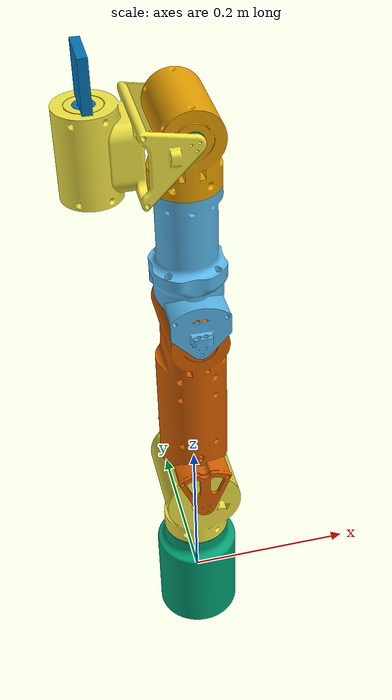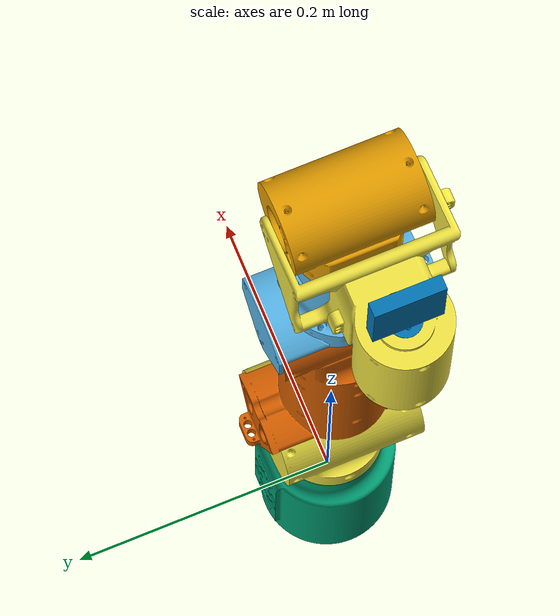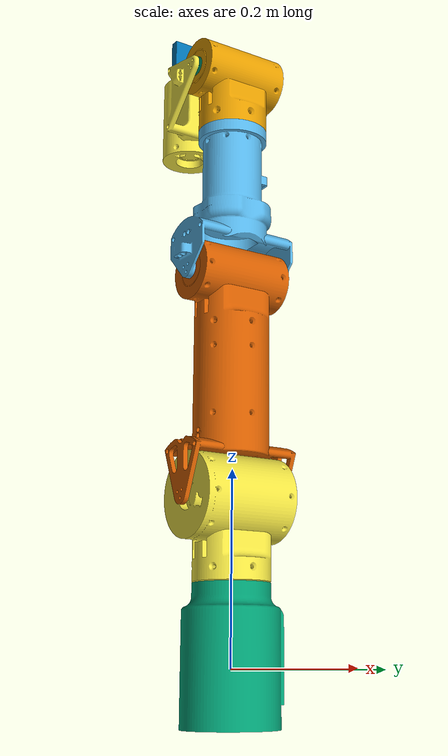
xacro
<?xml version="1.0"?>
<robot xmlns:xacro="http://www.ros.org/wiki/xacro" name="arm6dof">
    <xacro:arg name="initial_positions_file" default="initial_positions.yaml" />

    <!-- Import arm6dof urdf file -->
    <xacro:include filename="$(find arm6dof)/urdf/arm6dof.urdf" />

    <!-- Import control_xacro -->
    <xacro:include filename="arm6dof.ros2_control.xacro" />

    <xacro:arm6dof_ros2_control name="FakeSystem" initial_positions_file="$(arg initial_positions_file)"/>

</robot>

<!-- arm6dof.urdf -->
<robot name="arm6dof">
    <link name="world"/>

    <joint name="world_to_base" type="fixed">
        <parent link="world"/>
        <child link="jedziemy_dalej_V2_Obudowa_podstawa-v11-v1"/>
        <origin xyz="0 0 0" rpy="0 0 0"/>
    </joint>

    <link name="Silnik_ak45-36-v1">
        <inertial>
            <origin xyz="0.003580379446193227 5.406745075496171e-14 0.04092390119448847" rpy="0.0 -0.0 0.0" />
            <mass value="0.41683812668748693" />
            <inertia ixx="0.0001596718423631377" iyy="0.00016041758536708417" izz="6.298914759078449e-05" ixy="-1.0059454821655886e-18" iyz="-1.1753999951775428e-17" ixz="-8.523883825948129e-06" />
        </inertial>
        <visual name="Silnik_ak45-36-v1_visual">
            <origin xyz="0.003050453025397868 5.337498401704634e-14 0.034866814490128" rpy="-1.2136222858187365e-13 0.08726646259971599 -1.0000285373388856e-14" />
            <geometry>
                <mesh filename="package://arm6dof/urdf/meshes/Silnik_ak45-36-v1.stl" scale="0.001 0.001 0.001" />
            </geometry>
        </visual>
        <collision name="Silnik_ak45-36-v1_collision">
            <origin xyz="0.003050453025397868 5.337498401704634e-14 0.034866814490128" rpy="-1.2136222858187365e-13 0.08726646259971599 -1.0000285373388856e-14" />
            <geometry>
                <mesh filename="package://arm6dof/urdf/meshes/Silnik_ak45-36-v1.stl" scale="0.001 0.001 0.001" />
            </geometry>
        </collision>
    </link>
    <link name="jedziemy_dalej_V2_Obudowa_podstawa-v11-v1">
        <inertial>
            <origin xyz="2.471665912677848e-07 0.0032741555763765 0.014476011172937737" rpy="0.0 0.0 0.0" />
            <mass value="0.45097504935689353" />
            <inertia ixx="0.0011045045572738714" iyy="0.0010560043800969792" izz="0.0005942744180107535" ixy="-1.1961935170963945e-10" iyz="2.0893202204241118e-05" ixz="5.52168309819333e-09" />
        </inertial>
        <visual name="jedziemy_dalej_V2_Obudowa_podstawa-v11-v1_visual">
            <origin xyz="0.0 0.0 0.0" rpy="0.0 0.0 0.0" />
            <geometry>
                <mesh filename="package://arm6dof/urdf/meshes/jedziemy_dalej_V2_Obudowa_podstawa-v11-v1.stl" scale="0.001 0.001 0.001" />
            </geometry>
        </visual>
        <collision name="jedziemy_dalej_V2_Obudowa_podstawa-v11-v1_collision">
            <origin xyz="0.0 0.0 0.0" rpy="0.0 0.0 0.0" />
            <geometry>
                <mesh filename="package://arm6dof/urdf/meshes/jedziemy_dalej_V2_Obudowa_podstawa-v11-v1.stl" scale="0.001 0.001 0.001" />
            </geometry>
        </collision>
    </link>
    <link name="wyjscie_podstawa-v1">
        <inertial>
            <origin xyz="-0.007191918295976691 0.0017451314732682378 0.08340251930657093" rpy="0.0 -0.0 0.0" />
            <mass value="0.5337084968673121" />
            <inertia ixx="0.001365378966283453" iyy="0.0011271288576293961" izz="0.0008234185615442948" ixy="-3.9309111973658765e-07" iyz="-2.5356254302744965e-05" ixz="4.685015929818161e-05" />
        </inertial>
        <visual name="wyjscie_podstawa-v1_visual">
            <origin xyz="-0.011496597303514164 -0.2575499984801143 0.13197911921705802" rpy="1.2165799188215818e-13 0.08726646259971646 -3.1415926535897833" />
            <geometry>
                <mesh filename="package://arm6dof/urdf/meshes/wyjscie_podstawa-v1.stl" scale="0.001 0.001 0.001" />
            </geometry>
        </visual>
        <collision name="wyjscie_podstawa-v1_collision">
            <origin xyz="-0.011496597303514164 -0.2575499984801143 0.13197911921705802" rpy="1.2165799188215818e-13 0.08726646259971646 -3.1415926535897833" />
            <geometry>
                <mesh filename="package://arm6dof/urdf/meshes/wyjscie_podstawa-v1.stl" scale="0.001 0.001 0.001" />
            </geometry>
        </collision>
    </link>
    <link name="silnik60-v1">
        <inertial>
            <origin xyz="1.8495017073405507e-09 -4.334650220982894e-09 0.030465794657075565" rpy="0.0 -0.0 0.0" />
            <mass value="0.832000556903433" />
            <inertia ixx="0.00034640030869088206" iyy="0.00034640030868888973" izz="0.0005855795083725968" ixy="-1.7694179454963455e-16" iyz="3.972285346277488e-16" ixz="6.1582683397176e-17" />
        </inertial>
        <visual name="silnik60-v1_visual">
            <origin xyz="-0.014825189168012792 -0.16945272255215543 0.03379999848006464" rpy="-1.658062789394613 -1.5707963267947829 0" />
            <geometry>
                <mesh filename="package://arm6dof/urdf/meshes/silnik60-v1.stl" scale="0.001 0.001 0.001" />
            </geometry>
        </visual>
        <collision name="silnik60-v1_collision">
            <origin xyz="-0.014825189168012792 -0.16945272255215543 0.03379999848006464" rpy="-1.658062789394613 -1.5707963267947829 0" />
            <geometry>
                <mesh filename="package://arm6dof/urdf/meshes/silnik60-v1.stl" scale="0.001 0.001 0.001" />
            </geometry>
        </collision>
    </link>
    <link name="jedziemy_dalej_V2_Przegub_2_ucho_bez_kabla-v7-v1">
        <inertial>
            <origin xyz="-0.14928721628295327 -0.05224952167105884 0.013059017101912086" rpy="0.0 -0.0 0.0" />
            <mass value="0.8177528117001724" />
            <inertia ixx="0.0009834893122915855" iyy="0.0042632648765358085" izz="0.0044936841285563005" ixy="-4.325151590830977e-05" iyz="2.1575499105728883e-06" ixz="0.00031319160742792175" />
        </inertial>
        <visual name="jedziemy_dalej_V2_Przegub_2_ucho_bez_kabla-v7-v1_visual">
            <origin xyz="0.06755468522974517 0.0616000000000441 0.08373084013822489" rpy="1.4835298641951804 3.310614754159522e-15 -1.570796326794779" />
            <geometry>
                <mesh filename="package://arm6dof/urdf/meshes/jedziemy_dalej_V2_Przegub_2_ucho_bez_kabla-v7-v1.stl" scale="0.001 0.001 0.001" />
            </geometry>
        </visual>
        <collision name="jedziemy_dalej_V2_Przegub_2_ucho_bez_kabla-v7-v1_collision">
            <origin xyz="0.06755468522974517 0.0616000000000441 0.08373084013822489" rpy="1.4835298641951804 3.310614754159522e-15 -1.570796326794779" />
            <geometry>
                <mesh filename="package://arm6dof/urdf/meshes/jedziemy_dalej_V2_Przegub_2_ucho_bez_kabla-v7-v1.stl" scale="0.001 0.001 0.001" />
            </geometry>
        </collision>
    </link>
    <link name="jedziemy_dalej_V2_3_przegub-v1_Sprzeglo_ak45-36-v12-v1-v1">
        <inertial>
            <origin xyz="2.1240247161102843e-09 0.04108021962528416 -3.7123828278140536e-09" rpy="0.0 -0.0 0.0" />
            <mass value="0.4168381266874869" />
            <inertia ixx="0.00016041758556541727" iyy="6.224340438697792e-05" izz="0.00016041758536859858" ixy="2.0086471548552765e-15" iyz="-1.752445545492444e-16" ixz="-1.7351861318098122e-14" />
        </inertial>
        <visual name="jedziemy_dalej_V2_3_przegub-v1_Sprzeglo_ak45-36-v12-v1-v1_visual">
            <origin xyz="2.1238577385673807e-09 0.02499999583371225 -3.7123680751705025e-09" rpy="1.570796326794901 0.08726646259971611 1.2148404276792067e-13" />
            <geometry>
                <mesh filename="package://arm6dof/urdf/meshes/jedziemy_dalej_V2_3_przegub-v1_Sprzeglo_ak45-36-v12-v1-v1.stl" scale="0.001 0.001 0.001" />
            </geometry>
        </visual>
        <collision name="jedziemy_dalej_V2_3_przegub-v1_Sprzeglo_ak45-36-v12-v1-v1_collision">
            <origin xyz="2.1238577385673807e-09 0.02499999583371225 -3.7123680751705025e-09" rpy="1.570796326794901 0.08726646259971611 1.2148404276792067e-13" />
            <geometry>
                <mesh filename="package://arm6dof/urdf/meshes/jedziemy_dalej_V2_3_przegub-v1_Sprzeglo_ak45-36-v12-v1-v1.stl" scale="0.001 0.001 0.001" />
            </geometry>
        </collision>
    </link>
    <link name="Bez-nazwy-v1_jedziemy_dalej_V2_silnik_ak_45_36-v1-v1">
        <inertial>
            <origin xyz="0.0035429149450254905 -0.04049572393485256 1.3297558110192399e-09" rpy="0.0 -0.0 0.0" />
            <mass value="0.4192142851894471" />
            <inertia ixx="0.00016334542340003255" iyy="6.297161364714481e-05" izz="0.00016411963707958777" ixy="8.849305406149165e-06" iyz="1.5707378973883745e-16" ixz="-1.3742262536253769e-17" />
        </inertial>
        <visual name="Bez-nazwy-v1_jedziemy_dalej_V2_silnik_ak_45_36-v1-v1_visual">
            <origin xyz="0.00521191170660039 -0.059572444214703424 1.3297689743785313e-09" rpy="-1.5707963267950176 6.687500211728214e-15 0.08726646259971646" />
            <geometry>
                <mesh filename="package://arm6dof/urdf/meshes/Bez-nazwy-v1_jedziemy_dalej_V2_silnik_ak_45_36-v1-v1.stl" scale="0.001 0.001 0.001" />
            </geometry>
        </visual>
        <collision name="Bez-nazwy-v1_jedziemy_dalej_V2_silnik_ak_45_36-v1-v1_collision">
            <origin xyz="0.00521191170660039 -0.059572444214703424 1.3297689743785313e-09" rpy="-1.5707963267950176 6.687500211728214e-15 0.08726646259971646" />
            <geometry>
                <mesh filename="package://arm6dof/urdf/meshes/Bez-nazwy-v1_jedziemy_dalej_V2_silnik_ak_45_36-v1-v1.stl" scale="0.001 0.001 0.001" />
            </geometry>
        </collision>
    </link>
    <link name="jedziemy_dalej_V2_Obrót-pózniej-v5-v1">
        <inertial>
            <origin xyz="-0.0046158587778199235 -0.0011095045862415448 -0.051933778126588205" rpy="0.0 -0.0 0.0" />
            <mass value="0.32878531940648154" />
            <inertia ixx="0.000509832899061511" iyy="0.0004038297217688336" izz="0.0003372019176561922" ixy="1.7348225850772502e-07" iyz="-1.0277384035525924e-05" ixz="-1.5994832759011132e-05" />
        </inertial>
        <visual name="jedziemy_dalej_V2_Obrót-pózniej-v5-v1_visual">
            <origin xyz="-0.010075962435666367 0.00754999980982846 -0.11574114442623273" rpy="-3.141592653589672 -0.08726646259971646 3.1415926535897865" />
            <geometry>
                <mesh filename="package://arm6dof/urdf/meshes/jedziemy_dalej_V2_Obrót-pózniej-v5-v1.stl" scale="0.001 0.001 0.001" />
            </geometry>
        </visual>
        <collision name="jedziemy_dalej_V2_Obrót-pózniej-v5-v1_collision">
            <origin xyz="-0.010075962435666367 0.00754999980982846 -0.11574114442623273" rpy="-3.141592653589672 -0.08726646259971646 3.1415926535897865" />
            <geometry>
                <mesh filename="package://arm6dof/urdf/meshes/jedziemy_dalej_V2_Obrót-pózniej-v5-v1.stl" scale="0.001 0.001 0.001" />
            </geometry>
        </collision>
    </link>
    <link name="jedziemy_dalej_V2_Komponent98-v1">
        <inertial>
            <origin xyz="-0.007566279995924292 0.05135006757190421 -0.08807751210315004" rpy="0.0 -0.0 0.0" />
            <mass value="0.3053908468979247" />
            <inertia ixx="0.0008056737865500107" iyy="0.0006986117839719048" izz="0.0003737065384801923" ixy="5.44375166488086e-07" iyz="5.261648555922213e-06" ixz="-3.722509979493284e-05" />
        </inertial>
        <visual name="jedziemy_dalej_V2_Komponent98-v1_visual">
            <origin xyz="-0.0104897036537713 0.05128649132976626 -0.12245172543197906" rpy="1.5707963267950182 -0.0872664625997162 3.1415926535897865" />
            <geometry>
                <mesh filename="package://arm6dof/urdf/meshes/jedziemy_dalej_V2_Komponent98-v1.stl" scale="0.001 0.001 0.001" />
            </geometry>
        </visual>
        <collision name="jedziemy_dalej_V2_Komponent98-v1_collision">
            <origin xyz="-0.0104897036537713 0.05128649132976626 -0.12245172543197906" rpy="1.5707963267950182 -0.0872664625997162 3.1415926535897865" />
            <geometry>
                <mesh filename="package://arm6dof/urdf/meshes/jedziemy_dalej_V2_Komponent98-v1.stl" scale="0.001 0.001 0.001" />
            </geometry>
        </collision>
    </link>
    <link name="jedziemy_dalej_V2_silnik_ak45-10-v1">
        <inertial>
            <origin xyz="3.4273072380130997e-10 1.3841049906204716e-09 0.028604161845095226" rpy="0.0 -0.0 0.0" />
            <mass value="0.3323674270148887" />
            <inertia ixx="7.296632840646244e-05" iyy="7.296632840774278e-05" izz="8.75986515185348e-05" ixy="-1.1969591984239966e-16" iyz="3.941048055676882e-17" ixz="-5.20537290375787e-18" />
        </inertial>
        <visual name="jedziemy_dalej_V2_silnik_ak45-10-v1_visual">
            <origin xyz="0.645624326954073 0.04934544478131574 0.020169594045718397" rpy="0.08726646259971632 -1.5707963267947829 0" />
            <geometry>
                <mesh filename="package://arm6dof/urdf/meshes/jedziemy_dalej_V2_silnik_ak45-10-v1.stl" scale="0.001 0.001 0.001" />
            </geometry>
        </visual>
        <collision name="jedziemy_dalej_V2_silnik_ak45-10-v1_collision">
            <origin xyz="0.645624326954073 0.04934544478131574 0.020169594045718397" rpy="0.08726646259971632 -1.5707963267947829 0" />
            <geometry>
                <mesh filename="package://arm6dof/urdf/meshes/jedziemy_dalej_V2_silnik_ak45-10-v1.stl" scale="0.001 0.001 0.001" />
            </geometry>
        </collision>
    </link>
    <link name="jedziemy_dalej_V2_Komponent98-Kopiuj-v1">
        <inertial>
            <origin xyz="0.07365746358145224 0.012687811439143602 0.04794738442370318" rpy="0.0 -0.0 0.0" />
            <mass value="0.29460800887883326" />
            <inertia ixx="0.00040040959872039705" iyy="0.00040577634423346384" izz="0.0004474525637582702" ixy="-6.379315144444338e-06" iyz="1.0811119801610974e-06" ixz="2.7359489795726424e-06" />
        </inertial>
        <visual name="jedziemy_dalej_V2_Komponent98-Kopiuj-v1_visual">
            <origin xyz="0.09312353433404426 0.0026086896217353585 0.047950207200446696" rpy="-1.1353778868109705e-13 -6.5913539911443344e-15 -0.08726646259971657" />
            <geometry>
                <mesh filename="package://arm6dof/urdf/meshes/jedziemy_dalej_V2_Komponent98-Kopiuj-v1.stl" scale="0.001 0.001 0.001" />
            </geometry>
        </visual>
        <collision name="jedziemy_dalej_V2_Komponent98-Kopiuj-v1_collision">
            <origin xyz="0.09312353433404426 0.0026086896217353585 0.047950207200446696" rpy="-1.1353778868109705e-13 -6.5913539911443344e-15 -0.08726646259971657" />
            <geometry>
                <mesh filename="package://arm6dof/urdf/meshes/jedziemy_dalej_V2_Komponent98-Kopiuj-v1.stl" scale="0.001 0.001 0.001" />
            </geometry>
        </collision>
    </link>
    <link name="jedziemy_dalej_V2_silnik_ak45-10-Kopiuj-v1">
        <inertial>
            <origin xyz="0.0006150751617115268 -0.007030380133527175 2.7995666440627786e-09" rpy="0.0 -0.0 0.0" />
            <mass value="0.5402493377389448" />
            <inertia ixx="0.0005552695009332642" iyy="0.00013221837533821008" izz="0.0005205551135322728" ixy="3.729766383056901e-05" iyz="5.345116710353537e-17" ixz="1.6263032587282567e-18" />
        </inertial>
        <visual name="jedziemy_dalej_V2_silnik_ak45-10-Kopiuj-v1_visual">
            <origin xyz="0.6489814058411396 0.010973813352139886 0.007112201434090681" rpy="-1.5707963267949976 1.1724678376479107e-13 1.6580627893946132" />
            <geometry>
                <mesh filename="package://arm6dof/urdf/meshes/jedziemy_dalej_V2_silnik_ak45-10-Kopiuj-v1.stl" scale="0.001 0.001 0.001" />
            </geometry>
        </visual>
        <collision name="jedziemy_dalej_V2_silnik_ak45-10-Kopiuj-v1_collision">
            <origin xyz="0.6489814058411396 0.010973813352139886 0.007112201434090681" rpy="-1.5707963267949976 1.1724678376479107e-13 1.6580627893946132" />
            <geometry>
                <mesh filename="package://arm6dof/urdf/meshes/jedziemy_dalej_V2_silnik_ak45-10-Kopiuj-v1.stl" scale="0.001 0.001 0.001" />
            </geometry>
        </collision>
    </link>
    <joint name="joint1" type="continuous">
        <origin xyz="2.0165472403022023e-09 -4.9131935433459895e-14 0.06000000023355941" rpy="-3.141592653589672 0.08726646259971646 -3.141592653589792" />
        <parent link="jedziemy_dalej_V2_Obudowa_podstawa-v11-v1" />
        <child link="Silnik_ak45-36-v1" />
        <axis xyz="-0.087156 3.041496221545257e-16 -0.996195" />
    </joint>
    <joint name="Silnik_ak45-36-v1_Sztywne-2" type="fixed">
        <origin xyz="-1.7430000000011602e-05 6.083022974223082e-20 -0.0001992399999999961" rpy="-3.141592653589793 -0.0 0.0" />
        <parent link="Silnik_ak45-36-v1" />
        <child link="wyjscie_podstawa-v1" />
    </joint>
    <joint name="joint2" type="continuous">
        <origin xyz="0.0 0.0 0.00019999999999999575" rpy="-1.5707963267948966 -3.7231628423627605e-15 1.5707963267948966" />
        <parent link="silnik60-v1" />
        <child link="jedziemy_dalej_V2_Przegub_2_ucho_bez_kabla-v7-v1" />
        <axis xyz="0.0 1.0 0.0" />
    </joint>
    <joint name="jedziemy_dalej_V2_Przegub_2_ucho_bez_kabla-v7-v1_Sztywne-4" type="fixed">
        <origin xyz="-0.23761789 -0.10426027000000002 0.02073868000000001" rpy="-3.818058395732717e-16 -2.524354896707238e-29 0.0" />
        <parent link="jedziemy_dalej_V2_Przegub_2_ucho_bez_kabla-v7-v1" />
        <child link="jedziemy_dalej_V2_3_przegub-v1_Sprzeglo_ak45-36-v12-v1-v1" />
    </joint>
    <joint name="joint3" type="continuous">
        <origin xyz="0.0 -0.00019999999999999575 0.0" rpy="-9.638134407182025e-45 1.570796326794893 0" />
        <parent link="jedziemy_dalej_V2_3_przegub-v1_Sprzeglo_ak45-36-v12-v1-v1" />
        <child link="jedziemy_dalej_V2_Komponent98-v1" />
        <axis xyz="0.0 -1.0 0.0" />
    </joint>
    <joint name="joint4" type="continuous">
        <origin xyz="-0.01372318 0.05128649 -0.15941054999999998" rpy="-1.5707963267948966 -1.5777218104420236e-30 0.0" />
        <parent link="jedziemy_dalej_V2_Komponent98-v1" />
        <child link="Bez-nazwy-v1_jedziemy_dalej_V2_silnik_ak_45_36-v1-v1" />
        <axis xyz="0.087156 -0.996195 2.514749726325267e-29" />
    </joint>
    <joint name="Bez-nazwy-v1_jedziemy_dalej_V2_silnik_ak_45_36-v1-v1_Sztywne-7" type="fixed">
        <origin xyz="-1.742999999999384e-05 0.0001992399999999961 0.0" rpy="1.5707963267948966 -3.1554436208840472e-30 1.5777218104420236e-30" />
        <parent link="Bez-nazwy-v1_jedziemy_dalej_V2_silnik_ak_45_36-v1-v1" />
        <child link="jedziemy_dalej_V2_Obrót-pózniej-v5-v1" />
    </joint>
    <joint name="jedziemy_dalej_V2_Obrót-pózniej-v5-v1_Sztywne-8" type="fixed">
        <origin xyz="-0.006841730000000004 -0.04755 -0.07820128000000001" rpy="-1.5707963267949003 -0.0 0.0" />
        <parent link="jedziemy_dalej_V2_Obrót-pózniej-v5-v1" />
        <child link="jedziemy_dalej_V2_silnik_ak45-10-v1" />
    </joint>
    <joint name="joint5" type="continuous">
        <origin xyz="-0.006811730000000003 0.04755000000000001 -0.07800354000000002" rpy="1.570796326794893 -0.0 0.0" />
        <parent link="jedziemy_dalej_V2_Obrót-pózniej-v5-v1" />
        <child link="jedziemy_dalej_V2_Komponent98-Kopiuj-v1" />
        <axis xyz="-3.1554436208840472e-30 -3.723162842362723e-15 1.0" />
    </joint>
    <joint name="wyjscie_podstawa-v1_Sztywne-10" type="fixed">
        <origin xyz="-0.009552769999999988 -0.050499999999999996 0.10918289000000002" rpy="-1.5707963267949003 -0.0 0.0" />
        <parent link="wyjscie_podstawa-v1" />
        <child link="silnik60-v1" />
    </joint>
    <joint name="joint6" type="continuous">
        <origin xyz="0.08989005999999998 -0.03435013000000016 0.04795020999999988" rpy="-3.1415926535897896 -3.155443620884053e-30 1.5777218104420119e-30" />
        <parent link="jedziemy_dalej_V2_Komponent98-Kopiuj-v1" />
        <child link="jedziemy_dalej_V2_silnik_ak45-10-Kopiuj-v1" />
        <axis xyz="0.087156 -0.996195 0.0" />
    </joint>

    <ros2_control name="arm6dof_system" type="system">
        <hardware>
            <plugin>arm6dof/ArmHardwareInterface</plugin>
        </hardware>
        <joint name="joint1">
            <command_interface name="position"/>
            <state_interface name="position"/>
            <state_interface name="velocity"/>
        </joint>
        <joint name="joint2">
            <command_interface name="position"/>
            <state_interface name="position"/>
            <state_interface name="velocity"/>
        </joint>
        <joint name="joint3">
            <command_interface name="position"/>
            <state_interface name="position"/>
            <state_interface name="velocity"/>
        </joint>
        <joint name="joint4">
            <command_interface name="position"/>
            <state_interface name="position"/>
            <state_interface name="velocity"/>
        </joint>
        <joint name="joint5">
            <command_interface name="position"/>
            <state_interface name="position"/>
            <state_interface name="velocity"/>
        </joint>
        <joint name="joint6">
            <command_interface name="position"/>
            <state_interface name="position"/>
            <state_interface name="velocity"/>
        </joint>
    </ros2_control>

</robot>
